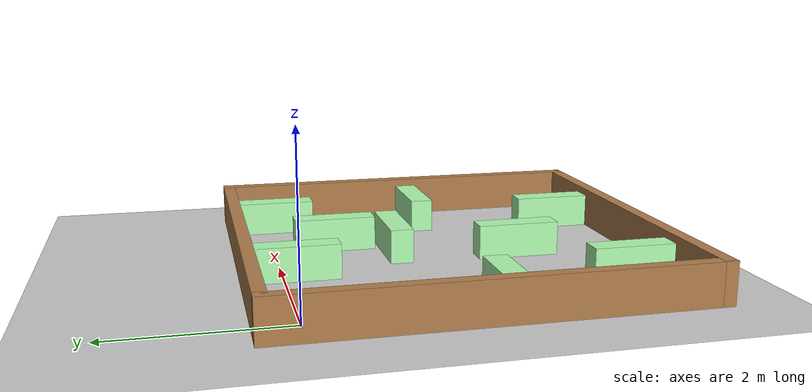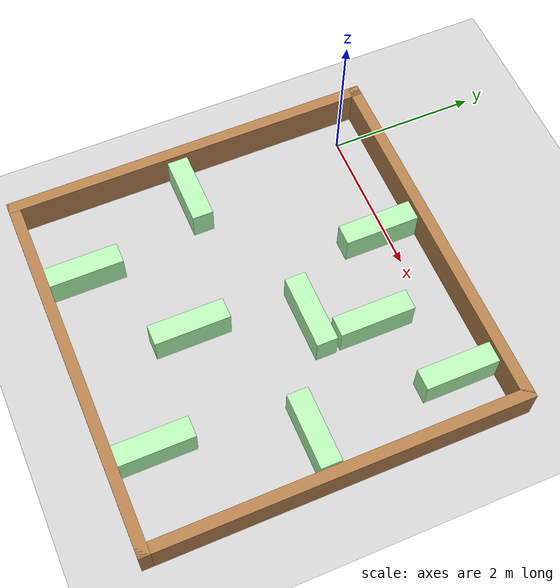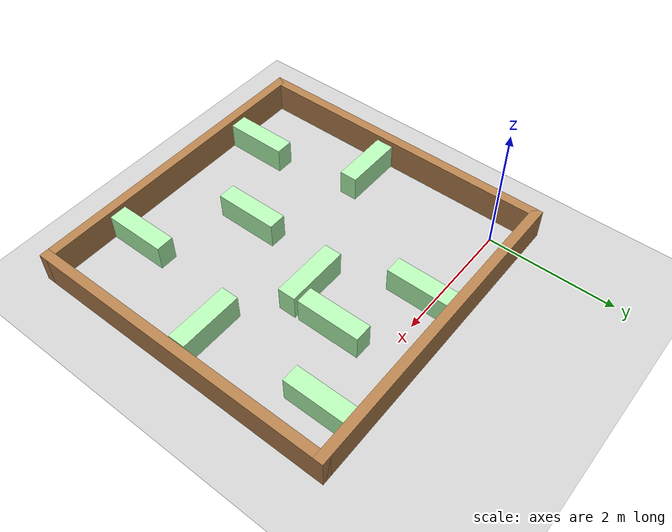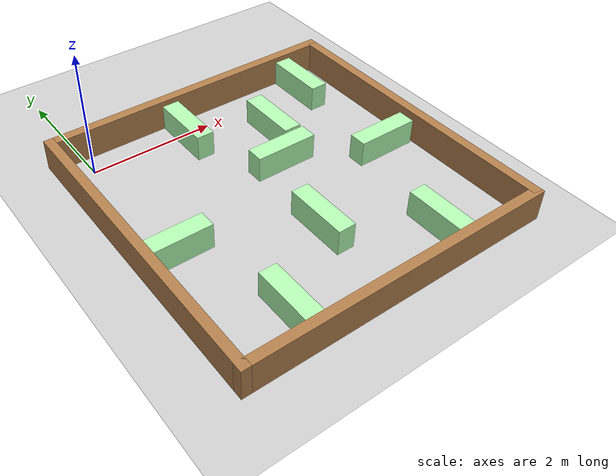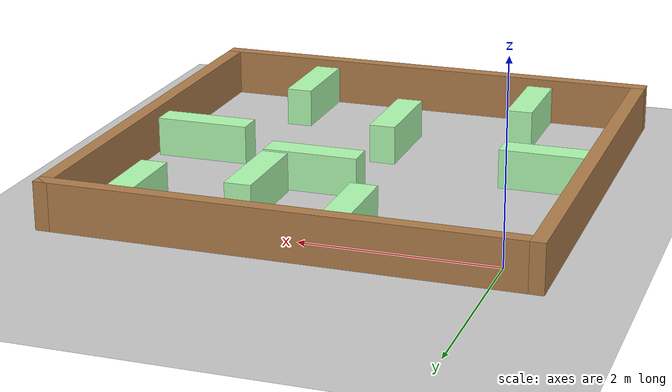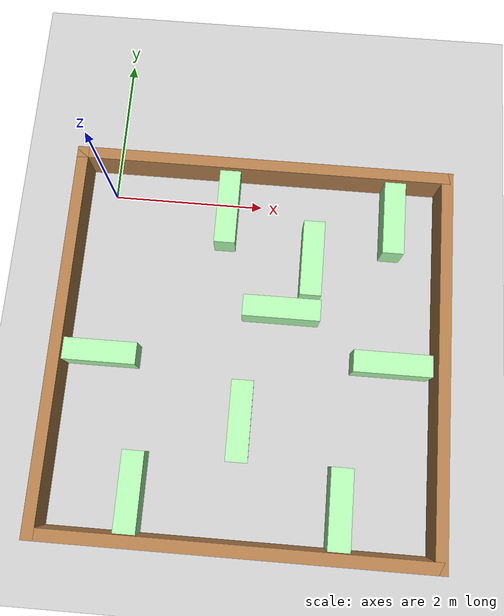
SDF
<sdf version="1.7">
 <world name="default">
  <model name="ground_plane">
   <static>1</static>
   <link name="link">
    <collision name="collision">
     <geometry><plane><normal>0 0 1</normal><size>100 100</size></plane></geometry>
     <surface><friction><ode><mu>100</mu><mu2>50</mu2></ode></friction></surface>
    </collision>
    <visual name="visual">
     <cast_shadows>0</cast_shadows>
     <geometry><plane><normal>0 0 1</normal><size>100 100</size></plane></geometry>
     <material>
      <script><uri>file://media/materials/scripts/gazebo.material</uri><name>Gazebo/Grey</name></script>
     </material>
    </visual>
   </link>
  </model>
  <light name="sun" type="directional">
   <pose>0 0 10 0 -0 0</pose>
   <diffuse>0.8 0.8 0.8 1</diffuse>
   <specular>0.2 0.2 0.2 1</specular>
   <attenuation>
    <range>1000</range>
    <constant>0.9</constant>
    <linear>0.01</linear>
    <quadratic>0.001</quadratic>
   </attenuation>
   <direction>-0.5 0.1 -0.9</direction>
   <spot><inner_angle>0</inner_angle><outer_angle>0</outer_angle><falloff>0</falloff></spot>
  </light>
  <scene><shadows>0</shadows><ambient>0.4 0.4 0.4 1</ambient><background>0.7 0.7 0.7 1</background></scene>
  <physics type="ode">
   <real_time_update_rate>1000</real_time_update_rate>
   <max_step_size>0.001</max_step_size>
   <real_time_factor>1</real_time_factor>
   <ode>
    <solver>
     <type>quick</type>
     <iters>150</iters>
     <precon_iters>0</precon_iters>
     <sor>1.4</sor>
     <use_dynamic_moi_rescaling>1</use_dynamic_moi_rescaling>
    </solver>
    <constraints>
     <cfm>1e-05</cfm>
     <erp>0.2</erp>
     <contact_max_correcting_vel>2000</contact_max_correcting_vel>
     <contact_surface_layer>0.01</contact_surface_layer>
    </constraints>
   </ode>
  </physics>
  <model name="turtlebot3_dqn_world">
   <static>1</static>
   <frame name="turtlebot3_square::__model__" attached_to="turtlebot3_square::Wall_1">
    <pose relative_to="__model__">0 0 0 0 -0 0</pose>
   </frame>
   <link name="turtlebot3_square::Wall_1">
    <collision name="Wall_1_Collision">
     <geometry><box><size>5 0.15 0.5</size></box></geometry>
     <pose>0 0 0.25 0 -0 0</pose>
    </collision>
    <visual name="Wall_1_Visual">
     <pose>0 0 0.25 0 -0 0</pose>
     <geometry><box><size>5 0.15 0.5</size></box></geometry>
     <material>
      <script><uri>file://media/materials/scripts/gazebo.material</uri><name>Gazebo/Wood</name></script>
      <ambient>1 1 1 1</ambient>
     </material>
    </visual>
    <pose relative_to="turtlebot3_square::__model__">-2.425 0 0 0 -0 1.5708</pose>
   </link>
   <link name="turtlebot3_square::Wall_2">
    <collision name="Wall_2_Collision">
     <geometry><box><size>5 0.15 0.5</size></box></geometry>
     <pose>0 0 0.25 0 -0 0</pose>
    </collision>
    <visual name="Wall_2_Visual">
     <pose>0 0 0.25 0 -0 0</pose>
     <geometry><box><size>5 0.15 0.5</size></box></geometry>
     <material>
      <script><uri>file://media/materials/scripts/gazebo.material</uri><name>Gazebo/Wood</name></script>
      <ambient>1 1 1 1</ambient>
     </material>
    </visual>
    <pose relative_to="turtlebot3_square::__model__">0 2.425 0 0 -0 0</pose>
   </link>
   <link name="turtlebot3_square::Wall_3">
    <collision name="Wall_3_Collision">
     <geometry><box><size>5 0.15 0.5</size></box></geometry>
     <pose>0 0 0.25 0 -0 0</pose>
    </collision>
    <visual name="Wall_3_Visual">
     <pose>0 0 0.25 0 -0 0</pose>
     <geometry><box><size>5 0.15 0.5</size></box></geometry>
     <material>
      <script><uri>file://media/materials/scripts/gazebo.material</uri><name>Gazebo/Wood</name></script>
      <ambient>1 1 1 1</ambient>
     </material>
    </visual>
    <pose relative_to="turtlebot3_square::__model__">2.425 0 0 0 0 -1.5708</pose>
   </link>
   <link name="turtlebot3_square::Wall_4">
    <collision name="Wall_4_Collision">
     <geometry><box><size>5 0.15 0.5</size></box></geometry>
     <pose>0 0 0.25 0 -0 0</pose>
    </collision>
    <visual name="Wall_4_Visual">
     <pose>0 0 0.25 0 -0 0</pose>
     <geometry><box><size>5 0.15 0.5</size></box></geometry>
     <material>
      <script><uri>file://media/materials/scripts/gazebo.material</uri><name>Gazebo/Wood</name></script>
      <ambient>1 1 1 1</ambient>
     </material>
    </visual>
    <pose relative_to="turtlebot3_square::__model__">0 -2.425 0 0 -0 3.14159</pose>
   </link>
   <static>1</static>
   <pose>2 -2 0 0 -0 0</pose>
  </model>
  <gravity>0 0 -9.8</gravity>
  <magnetic_field>6e-06 2.3e-05 -4.2e-05</magnetic_field>
  <atmosphere type="adiabatic"/>
  <audio><device>default</device></audio>
  <spherical_coordinates>
   <surface_model>EARTH_WGS84</surface_model>
   <latitude_deg>0</latitude_deg>
   <longitude_deg>0</longitude_deg>
   <elevation>0</elevation>
   <heading_deg>0</heading_deg>
  </spherical_coordinates>
  <model name="gren_box_fr">
   <link name="link">
    <inertial>
     <mass>0.114995</mass>
     <inertia>
      <ixx>0.0112153</ixx>
      <ixy>0</ixy>
      <ixz>0</ixz>
      <iyy>0.00237642</iyy>
      <iyz>0</iyz>
      <izz>0.0103269</izz>
     </inertia>
    </inertial>
    <visual name="visual">
     <geometry><box><size>0.27864 1 0.412729</size></box></geometry>
     <material>
      <script><name>Gazebo/Grey</name><uri>file://media/materials/scripts/gazebo.material</uri></script>
      <shader type="pixel"><normal_map>__default__</normal_map></shader>
      <ambient>0 1 0 0</ambient>
      <diffuse>0.7 1 0.7 1</diffuse>
      <specular>0.01 0.01 0.01 1</specular>
      <emissive>0 0 0 1</emissive>
     </material>
    </visual>
    <collision name="collision">
     <geometry><box><size>0.27864 1 0.412729</size></box></geometry>
     <surface>
      <friction>
       <ode><mu>1</mu><mu2>1</mu2><fdir1>0 0 0</fdir1><slip1>0</slip1><slip2>0</slip2></ode>
       <torsional>
        <coefficient>1</coefficient>
        <patch_radius>0</patch_radius>
        <surface_radius>0</surface_radius>
        <use_patch_radius>1</use_patch_radius>
        <ode><slip>0</slip></ode>
       </torsional>
      </friction>
      <bounce><restitution_coefficient>0</restitution_coefficient><threshold>1e+06</threshold></bounce>
      <contact>
       <collide_without_contact>0</collide_without_contact>
       <collide_without_contact_bitmask>1</collide_without_contact_bitmask>
       <collide_bitmask>1</collide_bitmask>
       <ode>
        <soft_cfm>0</soft_cfm>
        <soft_erp>0.2</soft_erp>
        <kp>1e+13</kp>
        <kd>1</kd>
        <max_vel>0.01</max_vel>
        <min_depth>0</min_depth>
       </ode>
       <bullet>
        <split_impulse>1</split_impulse>
        <split_impulse_penetration_threshold>-0.01</split_impulse_penetration_threshold>
        <soft_cfm>0</soft_cfm>
        <soft_erp>0.2</soft_erp>
        <kp>1e+13</kp>
        <kd>1</kd>
       </bullet>
      </contact>
     </surface>
    </collision>
   </link>
   <static>1</static>
   <pose>2.71654 -0.771901 0.206364 0 -0 0</pose>
  </model>
  <model name="gren_box_fr_clone">
   <link name="link">
    <inertial>
     <mass>0.114995</mass>
     <inertia>
      <ixx>0.0112153</ixx>
      <ixy>0</ixy>
      <ixz>0</ixz>
      <iyy>0.00237642</iyy>
      <iyz>0</iyz>
      <izz>0.0103269</izz>
     </inertia>
    </inertial>
    <visual name="visual">
     <geometry><box><size>0.27864 1 0.412729</size></box></geometry>
     <material>
      <script><name>Gazebo/Grey</name><uri>file://media/materials/scripts/gazebo.material</uri></script>
      <shader type="pixel"><normal_map>__default__</normal_map></shader>
      <ambient>0 1 0 0</ambient>
      <diffuse>0.7 1 0.7 1</diffuse>
      <specular>0.01 0.01 0.01 1</specular>
      <emissive>0 0 0 1</emissive>
     </material>
    </visual>
    <collision name="collision">
     <geometry><box><size>0.27864 1 0.412729</size></box></geometry>
     <surface>
      <friction>
       <ode><mu>1</mu><mu2>1</mu2><fdir1>0 0 0</fdir1><slip1>0</slip1><slip2>0</slip2></ode>
       <torsional>
        <coefficient>1</coefficient>
        <patch_radius>0</patch_radius>
        <surface_radius>0</surface_radius>
        <use_patch_radius>1</use_patch_radius>
        <ode><slip>0</slip></ode>
       </torsional>
      </friction>
      <bounce><restitution_coefficient>0</restitution_coefficient><threshold>1e+06</threshold></bounce>
      <contact>
       <collide_without_contact>0</collide_without_contact>
       <collide_without_contact_bitmask>1</collide_without_contact_bitmask>
       <collide_bitmask>1</collide_bitmask>
       <ode>
        <soft_cfm>0</soft_cfm>
        <soft_erp>0.2</soft_erp>
        <kp>1e+13</kp>
        <kd>1</kd>
        <max_vel>0.01</max_vel>
        <min_depth>0</min_depth>
       </ode>
       <bullet>
        <split_impulse>1</split_impulse>
        <split_impulse_penetration_threshold>-0.01</split_impulse_penetration_threshold>
        <soft_cfm>0</soft_cfm>
        <soft_erp>0.2</soft_erp>
        <kp>1e+13</kp>
        <kd>1</kd>
       </bullet>
      </contact>
     </surface>
    </collision>
   </link>
   <static>1</static>
   <pose>0.688171 -3.87381 0.206364 0 -0 0</pose>
  </model>
  <model name="gren_box_fr_clone_clone">
   <link name="link">
    <inertial>
     <mass>0.114995</mass>
     <inertia>
      <ixx>0.0112153</ixx>
      <ixy>0</ixy>
      <ixz>0</ixz>
      <iyy>0.00237642</iyy>
      <iyz>0</iyz>
      <izz>0.0103269</izz>
     </inertia>
    </inertial>
    <visual name="visual">
     <geometry><box><size>0.27864 1 0.412729</size></box></geometry>
     <material>
      <script><name>Gazebo/Grey</name><uri>file://media/materials/scripts/gazebo.material</uri></script>
      <shader type="pixel"><normal_map>__default__</normal_map></shader>
      <ambient>0 1 0 0</ambient>
      <diffuse>0.7 1 0.7 1</diffuse>
      <specular>0.01 0.01 0.01 1</specular>
      <emissive>0 0 0 1</emissive>
     </material>
    </visual>
    <collision name="collision">
     <geometry><box><size>0.27864 1 0.412729</size></box></geometry>
     <surface>
      <friction>
       <ode><mu>1</mu><mu2>1</mu2><fdir1>0 0 0</fdir1><slip1>0</slip1><slip2>0</slip2></ode>
       <torsional>
        <coefficient>1</coefficient>
        <patch_radius>0</patch_radius>
        <surface_radius>0</surface_radius>
        <use_patch_radius>1</use_patch_radius>
        <ode><slip>0</slip></ode>
       </torsional>
      </friction>
      <bounce><restitution_coefficient>0</restitution_coefficient><threshold>1e+06</threshold></bounce>
      <contact>
       <collide_without_contact>0</collide_without_contact>
       <collide_without_contact_bitmask>1</collide_without_contact_bitmask>
       <collide_bitmask>1</collide_bitmask>
       <ode>
        <soft_cfm>0</soft_cfm>
        <soft_erp>0.2</soft_erp>
        <kp>1e+13</kp>
        <kd>1</kd>
        <max_vel>0.01</max_vel>
        <min_depth>0</min_depth>
       </ode>
       <bullet>
        <split_impulse>1</split_impulse>
        <split_impulse_penetration_threshold>-0.01</split_impulse_penetration_threshold>
        <soft_cfm>0</soft_cfm>
        <soft_erp>0.2</soft_erp>
        <kp>1e+13</kp>
        <kd>1</kd>
       </bullet>
      </contact>
     </surface>
    </collision>
   </link>
   <static>1</static>
   <pose>1.55376 -0.153298 0.206364 0 -0 -1e-06</pose>
  </model>
  <model name="gren_box_fr_clone_clone_0">
   <link name="link">
    <inertial>
     <mass>0.114995</mass>
     <inertia>
      <ixx>0.0112153</ixx>
      <ixy>0</ixy>
      <ixz>0</ixz>
      <iyy>0.00237642</iyy>
      <iyz>0</iyz>
      <izz>0.0103269</izz>
     </inertia>
    </inertial>
    <visual name="visual">
     <geometry><box><size>0.27864 1 0.412729</size></box></geometry>
     <material>
      <script><name>Gazebo/Grey</name><uri>file://media/materials/scripts/gazebo.material</uri></script>
      <shader type="pixel"><normal_map>__default__</normal_map></shader>
      <ambient>0 1 0 0</ambient>
      <diffuse>0.7 1 0.7 1</diffuse>
      <specular>0.01 0.01 0.01 1</specular>
      <emissive>0 0 0 1</emissive>
     </material>
    </visual>
    <collision name="collision">
     <geometry><box><size>0.27864 1 0.412729</size></box></geometry>
     <surface>
      <friction>
       <ode><mu>1</mu><mu2>1</mu2><fdir1>0 0 0</fdir1><slip1>0</slip1><slip2>0</slip2></ode>
       <torsional>
        <coefficient>1</coefficient>
        <patch_radius>0</patch_radius>
        <surface_radius>0</surface_radius>
        <use_patch_radius>1</use_patch_radius>
        <ode><slip>0</slip></ode>
       </torsional>
      </friction>
      <bounce><restitution_coefficient>0</restitution_coefficient><threshold>1e+06</threshold></bounce>
      <contact>
       <collide_without_contact>0</collide_without_contact>
       <collide_without_contact_bitmask>1</collide_without_contact_bitmask>
       <collide_bitmask>1</collide_bitmask>
       <ode>
        <soft_cfm>0</soft_cfm>
        <soft_erp>0.2</soft_erp>
        <kp>1e+13</kp>
        <kd>1</kd>
        <max_vel>0.01</max_vel>
        <min_depth>0</min_depth>
       </ode>
       <bullet>
        <split_impulse>1</split_impulse>
        <split_impulse_penetration_threshold>-0.01</split_impulse_penetration_threshold>
        <soft_cfm>0</soft_cfm>
        <soft_erp>0.2</soft_erp>
        <kp>1e+13</kp>
        <kd>1</kd>
       </bullet>
      </contact>
     </surface>
    </collision>
   </link>
   <static>1</static>
   <pose>3.23846 -3.87529 0.206364 0 -0 -1e-06</pose>
  </model>
  <model name="gren_box_fr_clone_clone_1">
   <link name="link">
    <inertial>
     <mass>0.114995</mass>
     <inertia>
      <ixx>0.0112153</ixx>
      <ixy>0</ixy>
      <ixz>0</ixz>
      <iyy>0.00237642</iyy>
      <iyz>0</iyz>
      <izz>0.0103269</izz>
     </inertia>
    </inertial>
    <visual name="visual">
     <geometry><box><size>0.27864 1 0.412729</size></box></geometry>
     <material>
      <script><name>Gazebo/Grey</name><uri>file://media/materials/scripts/gazebo.material</uri></script>
      <shader type="pixel"><normal_map>__default__</normal_map></shader>
      <ambient>0 1 0 0</ambient>
      <diffuse>0.7 1 0.7 1</diffuse>
      <specular>0.01 0.01 0.01 1</specular>
      <emissive>0 0 0 1</emissive>
     </material>
    </visual>
    <collision name="collision">
     <geometry><box><size>0.27864 1 0.412729</size></box></geometry>
     <surface>
      <friction>
       <ode><mu>1</mu><mu2>1</mu2><fdir1>0 0 0</fdir1><slip1>0</slip1><slip2>0</slip2></ode>
       <torsional>
        <coefficient>1</coefficient>
        <patch_radius>0</patch_radius>
        <surface_radius>0</surface_radius>
        <use_patch_radius>1</use_patch_radius>
        <ode><slip>0</slip></ode>
       </torsional>
      </friction>
      <bounce><restitution_coefficient>0</restitution_coefficient><threshold>1e+06</threshold></bounce>
      <contact>
       <collide_without_contact>0</collide_without_contact>
       <collide_without_contact_bitmask>1</collide_without_contact_bitmask>
       <collide_bitmask>1</collide_bitmask>
       <ode>
        <soft_cfm>0</soft_cfm>
        <soft_erp>0.2</soft_erp>
        <kp>1e+13</kp>
        <kd>1</kd>
        <max_vel>0.01</max_vel>
        <min_depth>0</min_depth>
       </ode>
       <bullet>
        <split_impulse>1</split_impulse>
        <split_impulse_penetration_threshold>-0.01</split_impulse_penetration_threshold>
        <soft_cfm>0</soft_cfm>
        <soft_erp>0.2</soft_erp>
        <kp>1e+13</kp>
        <kd>1</kd>
       </bullet>
      </contact>
     </surface>
    </collision>
   </link>
   <static>1</static>
   <pose>3.75719 -0.129539 0.206364 0 -0 -1e-06</pose>
  </model>
  <model name="gren_box_fr_clone_0">
   <link name="link">
    <inertial>
     <mass>0.114995</mass>
     <inertia>
      <ixx>0.0112153</ixx>
      <ixy>0</ixy>
      <ixz>0</ixz>
      <iyy>0.00237642</iyy>
      <iyz>0</iyz>
      <izz>0.0103269</izz>
     </inertia>
    </inertial>
    <visual name="visual">
     <geometry><box><size>0.27864 1 0.412729</size></box></geometry>
     <material>
      <script><name>Gazebo/Grey</name><uri>file://media/materials/scripts/gazebo.material</uri></script>
      <shader type="pixel"><normal_map>__default__</normal_map></shader>
      <ambient>0 1 0 0</ambient>
      <diffuse>0.7 1 0.7 1</diffuse>
      <specular>0.01 0.01 0.01 1</specular>
      <emissive>0 0 0 1</emissive>
     </material>
    </visual>
    <collision name="collision">
     <geometry><box><size>0.27864 1 0.412729</size></box></geometry>
     <surface>
      <friction>
       <ode><mu>1</mu><mu2>1</mu2><fdir1>0 0 0</fdir1><slip1>0</slip1><slip2>0</slip2></ode>
       <torsional>
        <coefficient>1</coefficient>
        <patch_radius>0</patch_radius>
        <surface_radius>0</surface_radius>
        <use_patch_radius>1</use_patch_radius>
        <ode><slip>0</slip></ode>
       </torsional>
      </friction>
      <bounce><restitution_coefficient>0</restitution_coefficient><threshold>1e+06</threshold></bounce>
      <contact>
       <collide_without_contact>0</collide_without_contact>
       <collide_without_contact_bitmask>1</collide_without_contact_bitmask>
       <collide_bitmask>1</collide_bitmask>
       <ode>
        <soft_cfm>0</soft_cfm>
        <soft_erp>0.2</soft_erp>
        <kp>1e+13</kp>
        <kd>1</kd>
        <max_vel>0.01</max_vel>
        <min_depth>0</min_depth>
       </ode>
       <bullet>
        <split_impulse>1</split_impulse>
        <split_impulse_penetration_threshold>-0.01</split_impulse_penetration_threshold>
        <soft_cfm>0</soft_cfm>
        <soft_erp>0.2</soft_erp>
        <kp>1e+13</kp>
        <kd>1</kd>
       </bullet>
      </contact>
     </surface>
    </collision>
   </link>
   <static>1</static>
   <pose>1.94461 -2.91876 0.206364 0 -0 0</pose>
  </model>
  <model name="gren_box_fr_clone_0_clone">
   <link name="link">
    <inertial>
     <mass>0.114995</mass>
     <inertia>
      <ixx>0.0112153</ixx>
      <ixy>0</ixy>
      <ixz>0</ixz>
      <iyy>0.00237642</iyy>
      <iyz>0</iyz>
      <izz>0.0103269</izz>
     </inertia>
    </inertial>
    <visual name="visual">
     <geometry><box><size>0.27864 1 0.412729</size></box></geometry>
     <material>
      <script><name>Gazebo/Grey</name><uri>file://media/materials/scripts/gazebo.material</uri></script>
      <shader type="pixel"><normal_map>__default__</normal_map></shader>
      <ambient>0 1 0 0</ambient>
      <diffuse>0.7 1 0.7 1</diffuse>
      <specular>0.01 0.01 0.01 1</specular>
      <emissive>0 0 0 1</emissive>
     </material>
    </visual>
    <collision name="collision">
     <geometry><box><size>0.27864 1 0.412729</size></box></geometry>
     <surface>
      <friction>
       <ode><mu>1</mu><mu2>1</mu2><fdir1>0 0 0</fdir1><slip1>0</slip1><slip2>0</slip2></ode>
       <torsional>
        <coefficient>1</coefficient>
        <patch_radius>0</patch_radius>
        <surface_radius>0</surface_radius>
        <use_patch_radius>1</use_patch_radius>
        <ode><slip>0</slip></ode>
       </torsional>
      </friction>
      <bounce><restitution_coefficient>0</restitution_coefficient><threshold>1e+06</threshold></bounce>
      <contact>
       <collide_without_contact>0</collide_without_contact>
       <collide_without_contact_bitmask>1</collide_without_contact_bitmask>
       <collide_bitmask>1</collide_bitmask>
       <ode>
        <soft_cfm>0</soft_cfm>
        <soft_erp>0.2</soft_erp>
        <kp>1e+13</kp>
        <kd>1</kd>
        <max_vel>0.01</max_vel>
        <min_depth>0</min_depth>
       </ode>
       <bullet>
        <split_impulse>1</split_impulse>
        <split_impulse_penetration_threshold>-0.01</split_impulse_penetration_threshold>
        <soft_cfm>0</soft_cfm>
        <soft_erp>0.2</soft_erp>
        <kp>1e+13</kp>
        <kd>1</kd>
       </bullet>
      </contact>
     </surface>
    </collision>
   </link>
   <static>1</static>
   <pose>2.36238 -1.46346 0.206364 0 0 -1.5708</pose>
  </model>
  <model name="gren_box_fr_clone_0_clone_0">
   <link name="link">
    <inertial>
     <mass>0.114995</mass>
     <inertia>
      <ixx>0.0112153</ixx>
      <ixy>0</ixy>
      <ixz>0</ixz>
      <iyy>0.00237642</iyy>
      <iyz>0</iyz>
      <izz>0.0103269</izz>
     </inertia>
    </inertial>
    <visual name="visual">
     <geometry><box><size>0.27864 1 0.412729</size></box></geometry>
     <material>
      <script><name>Gazebo/Grey</name><uri>file://media/materials/scripts/gazebo.material</uri></script>
      <shader type="pixel"><normal_map>__default__</normal_map></shader>
      <ambient>0 1 0 0</ambient>
      <diffuse>0.7 1 0.7 1</diffuse>
      <specular>0.01 0.01 0.01 1</specular>
      <emissive>0 0 0 1</emissive>
     </material>
    </visual>
    <collision name="collision">
     <geometry><box><size>0.27864 1 0.412729</size></box></geometry>
     <surface>
      <friction>
       <ode><mu>1</mu><mu2>1</mu2><fdir1>0 0 0</fdir1><slip1>0</slip1><slip2>0</slip2></ode>
       <torsional>
        <coefficient>1</coefficient>
        <patch_radius>0</patch_radius>
        <surface_radius>0</surface_radius>
        <use_patch_radius>1</use_patch_radius>
        <ode><slip>0</slip></ode>
       </torsional>
      </friction>
      <bounce><restitution_coefficient>0</restitution_coefficient><threshold>1e+06</threshold></bounce>
      <contact>
       <collide_without_contact>0</collide_without_contact>
       <collide_without_contact_bitmask>1</collide_without_contact_bitmask>
       <collide_bitmask>1</collide_bitmask>
       <ode>
        <soft_cfm>0</soft_cfm>
        <soft_erp>0.2</soft_erp>
        <kp>1e+13</kp>
        <kd>1</kd>
        <max_vel>0.01</max_vel>
        <min_depth>0</min_depth>
       </ode>
       <bullet>
        <split_impulse>1</split_impulse>
        <split_impulse_penetration_threshold>-0.01</split_impulse_penetration_threshold>
        <soft_cfm>0</soft_cfm>
        <soft_erp>0.2</soft_erp>
        <kp>1e+13</kp>
        <kd>1</kd>
       </bullet>
      </contact>
     </surface>
    </collision>
   </link>
   <static>1</static>
   <pose>0.082907 -2.19868 0.206364 0 0 -1.5708</pose>
  </model>
  <model name="gren_box_fr_clone_0_clone_1">
   <link name="link">
    <inertial>
     <mass>0.114995</mass>
     <inertia>
      <ixx>0.0112153</ixx>
      <ixy>0</ixy>
      <ixz>0</ixz>
      <iyy>0.00237642</iyy>
      <iyz>0</iyz>
      <izz>0.0103269</izz>
     </inertia>
    </inertial>
    <visual name="visual">
     <geometry><box><size>0.27864 1 0.412729</size></box></geometry>
     <material>
      <script><name>Gazebo/Grey</name><uri>file://media/materials/scripts/gazebo.material</uri></script>
      <shader type="pixel"><normal_map>__default__</normal_map></shader>
      <ambient>0 1 0 0</ambient>
      <diffuse>0.7 1 0.7 1</diffuse>
      <specular>0.01 0.01 0.01 1</specular>
      <emissive>0 0 0 1</emissive>
     </material>
    </visual>
    <collision name="collision">
     <geometry><box><size>0.27864 1 0.412729</size></box></geometry>
     <surface>
      <friction>
       <ode><mu>1</mu><mu2>1</mu2><fdir1>0 0 0</fdir1><slip1>0</slip1><slip2>0</slip2></ode>
       <torsional>
        <coefficient>1</coefficient>
        <patch_radius>0</patch_radius>
        <surface_radius>0</surface_radius>
        <use_patch_radius>1</use_patch_radius>
        <ode><slip>0</slip></ode>
       </torsional>
      </friction>
      <bounce><restitution_coefficient>0</restitution_coefficient><threshold>1e+06</threshold></bounce>
      <contact>
       <collide_without_contact>0</collide_without_contact>
       <collide_without_contact_bitmask>1</collide_without_contact_bitmask>
       <collide_bitmask>1</collide_bitmask>
       <ode>
        <soft_cfm>0</soft_cfm>
        <soft_erp>0.2</soft_erp>
        <kp>1e+13</kp>
        <kd>1</kd>
        <max_vel>0.01</max_vel>
        <min_depth>0</min_depth>
       </ode>
       <bullet>
        <split_impulse>1</split_impulse>
        <split_impulse_penetration_threshold>-0.01</split_impulse_penetration_threshold>
        <soft_cfm>0</soft_cfm>
        <soft_erp>0.2</soft_erp>
        <kp>1e+13</kp>
        <kd>1</kd>
       </bullet>
      </contact>
     </surface>
    </collision>
   </link>
   <static>1</static>
   <pose>3.8068 -2.06572 0.206364 0 0 -1.5708</pose>
  </model>
 </world>
</sdf>
